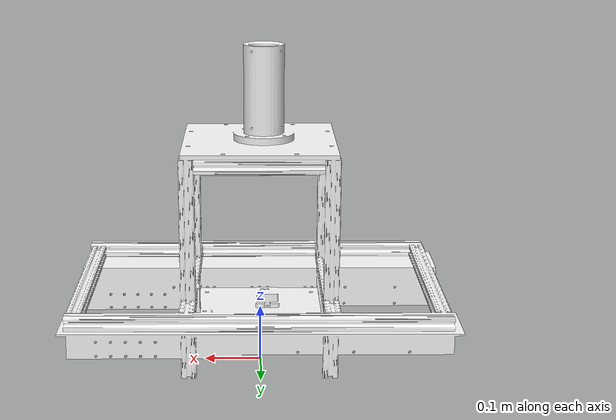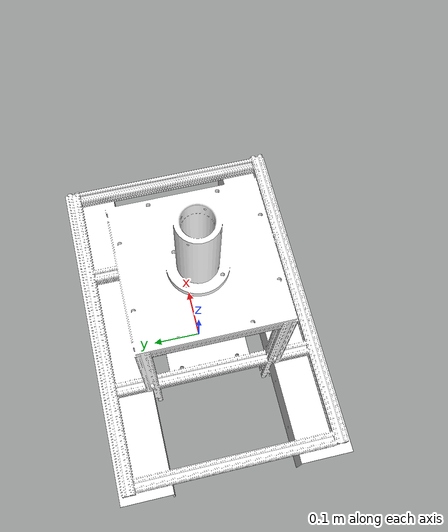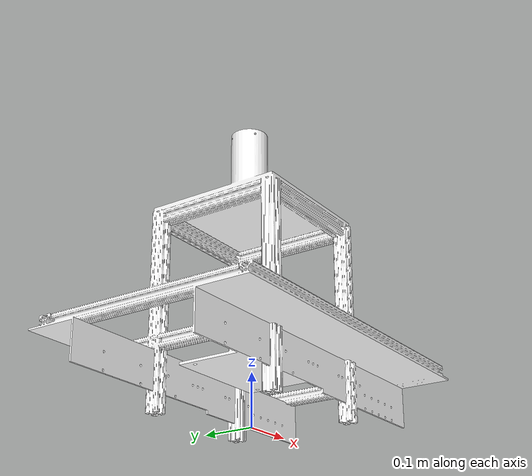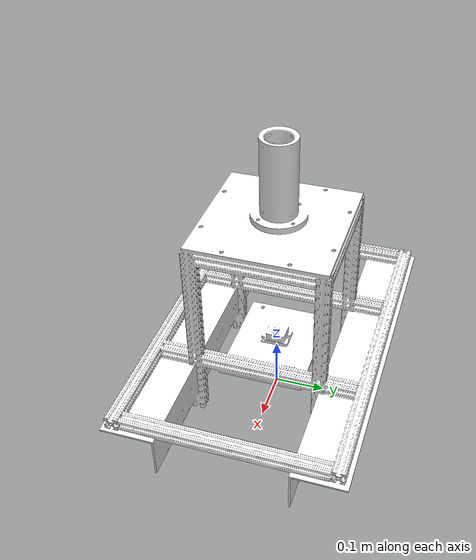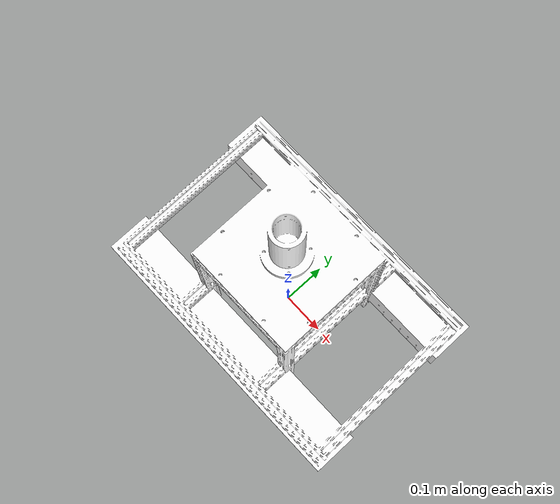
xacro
<?xml version="1.0"?>
<robot name="gvrbot" xmlns:xacro="http://www.ros.org/wiki/xacro">
    <xacro:include filename="$(find gvrbot)/models/urdf/inertial_tensors.urdf.xacro" />

  <xacro:property name="PI" value="3.1415926535897931" />

  <link name="base_link"></link>
  <link name="chassis_link"></link>

  <joint name="base_link_joint" type="fixed">
    <origin xyz="0 0 0" rpy="0 0 0" />
    <parent link="base_link"/>
    <child link="chassis_link" />
  </joint>

  <!-- Add 8020 Frame. -->
    <xacro:include filename="$(find gvrbot)/models/urdf/frame_8020.urdf.xacro" />
    <frame_8020 parent="base_link" offset_x="-0.315" offset_y="-0.1389" offset_z="-0.01"/>

</robot>

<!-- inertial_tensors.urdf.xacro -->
<robot xmlns:xacro="http://www.ros.org/wiki/xacro">

  <xacro:macro name="rectangular_prism_tensor" params="mass len_x len_y len_z">
    <inertia   ixx="${ mass / 3 * ( len_y * len_y + len_z * len_z ) }" ixy="${ mass / 4 * len_x * len_y }" ixz="${ mass / 4 * len_x * len_z }"
               iyy="${ mass / 3 * ( len_y * len_y + len_z * len_z ) }" iyz="${ mass / 4 * len_y * len_z }"
               izz="${ mass / 3 * ( len_y * len_y + len_z * len_z ) }" />
  </xacro:macro>

  <!-- Z axis through the center of top and bottom  -->
  <xacro:macro name="cylinder_tensor" params="mass radius height">
    <inertia   ixx="${ mass / 12 * height * height + mass / 4 * radius * radius }" ixy="0.0" ixz="0.0"
               iyy="${ mass / 12 * height * height + mass / 4 * radius * radius }" iyz="0.0"
               izz="${ mass / 2 * radius * radius }" />
  </xacro:macro>

  <xacro:macro name="box_inertia" params="x y z mass">
      <inertia ixx="${0.0833333 * mass * (y*y + z*z)}" ixy="0.0" ixz="0.0"
        iyy="${0.0833333 * mass * (x*x + z*z)}" iyz="0.0"
        izz="${0.0833333 * mass * (x*x + y*y)}" />
  </xacro:macro>

  <xacro:macro name="cylinder_inertial" params="radius length mass">
    <inertial>
      <mass value="${mass}" />
      <origin xyz="0 0 0" />
      <inertia ixx="${0.0833333 * mass * (3 * radius * radius + length * length)}" ixy="0.0" ixz="0.0"
        iyy="${0.0833333 * mass * (3 * radius * radius + length * length)}" iyz="0.0"
        izz="${0.5 * mass * radius * radius}" />
    </inertial>
  </xacro:macro>

</robot>

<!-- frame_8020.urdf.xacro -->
<robot xmlns:xacro="http://www.ros.org/wiki/xacro">

    <xacro:include filename="$(find gvrbot)/models/urdf/inertial_tensors.urdf.xacro" />

    <xacro:property name="frame_length" value="0.680" />
    <xacro:property name="frame_width" value="0.20" />
    <xacro:property name="frame_height" value="0.30" />
    <xacro:property name="frame_mass" value="2.89" />
    <xacro:property name="M_PI" value="3.14159"/>

    <xacro:macro name="frame_8020" params="parent offset_x offset_y offset_z">
        <joint name="frame_8020_joint" type="fixed">
            <origin xyz="${offset_x} ${offset_y} ${offset_z}" rpy="0 0 ${PI/2}" />
            <parent link="${parent}" />
            <child link="frame8020_link" />
        </joint>

        <link name="frame8020_link">
            <inertial>
              <origin xyz="0.135 -0.315 0.2" rpy="${PI/2} 0 ${PI/2}" />
              <mass value="${frame_mass}" />
                <box_inertia x="${frame_length}" y="${frame_width}" z="${frame_height}" mass="${frame_mass}" />
            </inertial>
            <visual>
              <origin xyz="0 0 0" rpy="0 0 0" />
              <geometry>
                <mesh filename="package://gvrbot/models/meshes/frame_8020.STL" />
              </geometry>
              <material name="">
                <color rgba="1 1 1 1" />
              </material>
            </visual>
            <collision>
              <origin xyz="0 0 0" rpy="0 0 0" />
              <geometry>
                <mesh filename="package://gvrbot/models/meshes/frame_8020.STL" />
              </geometry>
            </collision>
        </link>
   </xacro:macro>

</robot>
